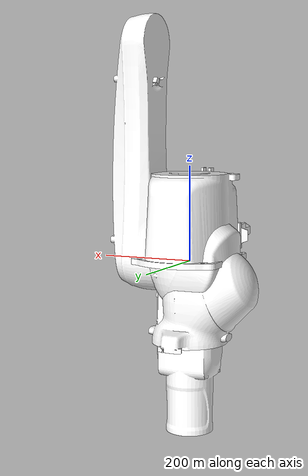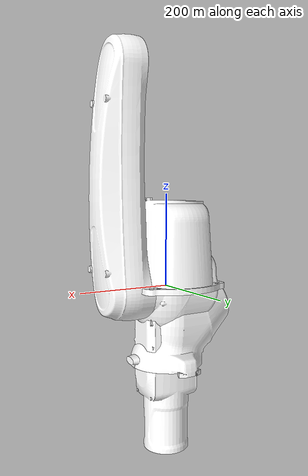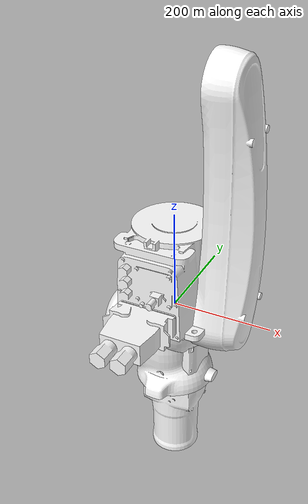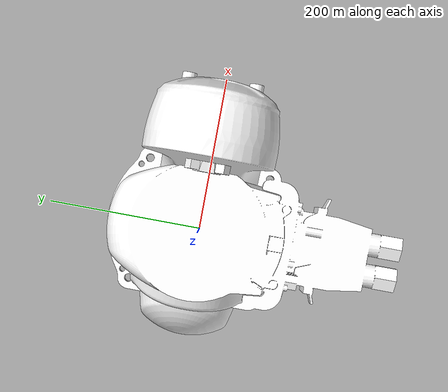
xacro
<?xml version="1.0" ?>
<robot name="khi_rs007l" xmlns:xacro="http://ros.org/wiki/xacro">
  <xacro:include filename="$(find khi_rs_description)/urdf/rs007l_macro.xacro"/>
  <xacro:include filename="$(find khi_rs_description)/urdf/common.gazebo.xacro" />

  <!-- instantiate rs007l -->
  <xacro:khi_rs007l prefix="" />

  <!-- Fix rs007l to world -->

  <link name="world"/>

  <joint name="world2base" type="fixed">
    <parent link="world"/>
    <child link="base_link"/>
    <origin rpy="0 0 0" xyz="0 0 0"/>
  </joint>
</robot>

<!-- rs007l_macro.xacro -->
<robot xmlns:xacro="http://ros.org/wiki/xacro">
  <xacro:macro name="khi_rs007l" params="prefix">

    <xacro:include filename="$(find khi_rs_description)/urdf/rs.transmission.xacro" />
    <xacro:add_transmissions prefix="${prefix}"/>

    <!-- link rviz colors -->
    <material name="${prefix}White">
      <color rgba="1 1 1 1"/>
    </material>

    <material name="${prefix}Black">
      <color rgba="0 0 0 1"/>
    </material>

    <!-- DH parameters -->
    <xacro:property name="dh_j1_j2_roty" value="${radians(-90)}"/>
    <xacro:property name="dh_j3_j4_roty" value="${radians( 90)}"/>
    <xacro:property name="dh_j4_j5_roty" value="${radians(-90)}"/>
    <xacro:property name="dh_j5_j6_roty" value="${radians( 90)}"/>

    <!-- link mass [kg] -->
    <xacro:property name="j0_mass" value="11"/>
    <xacro:property name="j1_mass" value="8.188"/>
    <xacro:property name="j2_mass" value="6.826"/>
    <xacro:property name="j3_mass" value="5.236"/>
    <xacro:property name="j4_mass" value="5.066"/>
    <xacro:property name="j5_mass" value="1.625"/>
    <xacro:property name="j6_mass" value="0.625"/>

    <!-- link lengths [m] -->
    <xacro:property name="j0_length" value="0.36"/>
    <xacro:property name="j1_length" value="0.0"/>
    <xacro:property name="j2_length" value="0.455"/>
    <xacro:property name="j3_length" value="0.0925"/>
    <xacro:property name="j4_length" value="0.3825"/>
    <xacro:property name="j5_length" value="0.078"/>

    <!-- joint limits [rad] -->
    <xacro:property name="j1_lower_limit" value="${radians(-180)}"/>
    <xacro:property name="j1_upper_limit" value="${radians( 180)}"/>
    <xacro:property name="j2_lower_limit" value="${radians(-135)}"/>
    <xacro:property name="j2_upper_limit" value="${radians( 135)}"/>
    <xacro:property name="j3_lower_limit" value="${radians(-157)}"/>
    <xacro:property name="j3_upper_limit" value="${radians( 157)}"/>
    <xacro:property name="j4_lower_limit" value="${radians(-200)}"/>
    <xacro:property name="j4_upper_limit" value="${radians( 200)}"/>
    <xacro:property name="j5_lower_limit" value="${radians(-125)}"/>
    <xacro:property name="j5_upper_limit" value="${radians( 125)}"/>
    <xacro:property name="j6_lower_limit" value="${radians(-360)}"/>
    <xacro:property name="j6_upper_limit" value="${radians( 360)}"/>

    <!-- joint verocity limits [rad/s] -->
    <xacro:property name="j1_velocity_limit" value="${radians( 370)}"/>
    <xacro:property name="j2_velocity_limit" value="${radians( 310)}"/>
    <xacro:property name="j3_velocity_limit" value="${radians( 410)}"/>
    <xacro:property name="j4_velocity_limit" value="${radians( 550)}"/>
    <xacro:property name="j5_velocity_limit" value="${radians( 550)}"/>
    <xacro:property name="j6_velocity_limit" value="${radians(1000)}"/>

    <!-- link inertial(TODO : set correct link inertial )-->
    <xacro:macro name="default_inertial" params="mass">
      <inertial>
        <mass value="${mass}" />
        <inertia ixx="1.0" ixy="0.0" ixz="0.0" iyy="1.0" iyz="0.0" izz="1.0" />
      </inertial>
    </xacro:macro>

    <!-- rs007l start -->

    <!-- Link 0 -->
    <link name="${prefix}base_link">
      <visual>
        <geometry>
          <mesh filename="package://khi_rs_description/meshes/RS007L_J0.stl"/>
        </geometry>
        <material name="${prefix}White"/>
        <origin rpy="0 0 0" xyz="0 0 0"/>
      </visual>
      <collision>
        <geometry>
          <mesh filename="package://khi_rs_description/meshes/RS007L_J0.stl"/>
        </geometry>
        <origin rpy="0 0 0" xyz="0 0 0"/>
      </collision>
      <xacro:default_inertial mass="${j0_mass}"/>
    </link>

    <!-- Link 1 -->
    <joint name="${prefix}joint1" type="revolute">
      <axis xyz="0 0 -1" rpy="0 0 0" />
      <limit effort="1000.0" lower="${j1_lower_limit}" upper="${j1_upper_limit}" velocity="${j1_velocity_limit}"/>
      <origin xyz="0 0 ${j0_length}" rpy="0 0 0" />
      <parent link="${prefix}base_link"/>
      <child link="${prefix}link1"/>
      <dynamics damping="0.0" friction="0.0"/>
    </joint>

    <link name="${prefix}link1">
      <visual>
        <geometry>
          <mesh filename="package://khi_rs_description/meshes/RS007L_J1.stl"/>
        </geometry>
        <material name="${prefix}White"/>
        <origin rpy="0 0 0" xyz="0 0 0"/>
      </visual>
      <collision>
        <geometry>
          <mesh filename="package://khi_rs_description/meshes/RS007L_J1.stl"/>
        </geometry>
        <origin rpy="0 0 0" xyz="0 0 0"/>
      </collision>
      <xacro:default_inertial mass="${j1_mass}"/>
    </link>

    <!-- Link 2 -->
    <joint name="${prefix}joint2" type="revolute">
      <axis xyz="0 0 1" rpy="0 0 0" />
      <limit effort="1000.0" lower="${j2_lower_limit}" upper="${j2_upper_limit}" velocity="${j2_velocity_limit}"/>
      <origin xyz="0 0 ${j1_length}" rpy="0 ${dh_j1_j2_roty} 0" />
      <parent link="${prefix}link1"/>
      <child link="${prefix}link2"/>
      <dynamics damping="0.0" friction="0.0"/>
    </joint>

    <link name="${prefix}link2">
      <visual>
        <geometry>
          <mesh filename="package://khi_rs_description/meshes/RS007L_J2.stl"/>
        </geometry>
        <material name="${prefix}White"/>
        <origin xyz="0 0 0" rpy="0 ${dh_j1_j2_roty*-1} 0"/>
      </visual>
      <collision>
        <geometry>
          <mesh filename="package://khi_rs_description/meshes/RS007L_J2.stl"/>
        </geometry>
        <origin xyz="0 0 0" rpy="0 ${dh_j1_j2_roty*-1} 0"/>
      </collision>
      <xacro:default_inertial mass="0${j2_mass}"/>
    </link>

    <!-- Link 3 -->
    <joint name="${prefix}joint3" type="revolute">
      <axis xyz="0 0 -1" rpy="0 0 0" />
      <limit effort="1000.0" lower="${j3_lower_limit}" upper="${j3_upper_limit}" velocity="${j3_velocity_limit}"/>
      <origin xyz="${j2_length} 0 0" rpy="0 0 0" />
      <parent link="${prefix}link2"/>
      <child link="${prefix}link3"/>
      <dynamics damping="0.0" friction="0.0"/>
    </joint>

    <link name="${prefix}link3">
      <visual>
        <geometry>
          <mesh filename="package://khi_rs_description/meshes/RS007L_J3.stl"/>
        </geometry>
        <material name="${prefix}White"/>
        <origin xyz="0 0 0" rpy="0 ${dh_j1_j2_roty*-1} 0"/>
      </visual>
      <collision>
        <geometry>
          <mesh filename="package://khi_rs_description/meshes/RS007L_J3.stl"/>
        </geometry>
        <origin xyz="0 0 0" rpy="0 ${dh_j1_j2_roty*-1} 0"/>
      </collision>
      <xacro:default_inertial mass="${j3_mass}"/>
    </link>

    <!-- Link 4 -->
    <joint name="${prefix}joint4" type="revolute">
      <axis xyz="0 0 1" rpy="0 0 0" />
      <limit effort="1000.0" lower="${j4_lower_limit}" upper="${j4_upper_limit}" velocity="${j4_velocity_limit}"/>
      <origin xyz="${j3_length} 0 0" rpy="0 ${dh_j3_j4_roty} 0" />
      <parent link="${prefix}link3"/>
      <child link="${prefix}link4"/>
      <dynamics damping="0.0" friction="0.0"/>
    </joint>

    <link name="${prefix}link4">
      <visual>
        <geometry>
          <mesh filename="package://khi_rs_description/meshes/RS007L_J4.stl"/>
        </geometry>
        <material name="${prefix}White"/>
        <origin xyz="0 0 ${j4_length}" rpy="0 0 0"/>
      </visual>
      <collision>
        <geometry>
          <mesh filename="package://khi_rs_description/meshes/RS007L_J4.stl"/>
        </geometry>
        <origin xyz="0 0 ${j4_length}" rpy="0 0 0"/>
      </collision>
      <xacro:default_inertial mass="${j4_mass}"/>
    </link>

    <!-- Link 5 -->
    <joint name="${prefix}joint5" type="revolute">
      <axis xyz="0 0 -1" rpy="0 0 0" />
      <limit effort="1000.0" lower="${j5_lower_limit}" upper="${j5_upper_limit}" velocity="${j5_velocity_limit}"/>
      <origin xyz="0 0 ${j4_length}" rpy="0 ${dh_j4_j5_roty} 0" />
      <parent link="${prefix}link4"/>
      <child link="${prefix}link5"/>
      <dynamics damping="0.0" friction="0.0"/>
    </joint>

    <link name="${prefix}link5">
      <visual>
        <geometry>
          <mesh filename="package://khi_rs_description/meshes/RS007L_J5.stl"/>
        </geometry>
        <material name="${prefix}White"/>
        <origin xyz="0 0 0" rpy="0 ${dh_j4_j5_roty*-1} 0"/>
      </visual>
      <collision>
        <geometry>
          <mesh filename="package://khi_rs_description/meshes/RS007L_J5.stl"/>
        </geometry>
        <origin xyz="0 0 0" rpy="0 ${dh_j4_j5_roty*-1} 0"/>
      </collision>
      <xacro:default_inertial mass="${j5_mass}"/>
    </link>

    <!-- Link 6 -->
    <joint name="${prefix}joint6" type="revolute">
      <axis xyz="0 0 1" rpy="0 0 0" />
      <limit effort="1000.0" lower="${j6_lower_limit}" upper="${j6_upper_limit}" velocity="${j6_velocity_limit}"/>
      <origin xyz="${j5_length} 0 0" rpy="0 ${dh_j5_j6_roty} 0" />
      <parent link="${prefix}link5"/>
      <child link="${prefix}link6"/>
      <dynamics damping="0.0" friction="0.0"/>
    </joint>

    <link name="${prefix}link6">
      <visual>
        <geometry>
          <mesh filename="package://khi_rs_description/meshes/RS007L_J6.stl"/>
        </geometry>
        <material name="${prefix}Black"/>
        <origin xyz="0 0 0" rpy="0 0 0"/>
      </visual>
      <collision>
        <geometry>
          <mesh filename="package://khi_rs_description/meshes/RS007L_J6.stl"/>
        </geometry>
        <origin xyz="0 0 0" rpy="0 0 0"/>
      </collision>
      <xacro:default_inertial mass="${j6_mass}"/>
    </link>
  </xacro:macro>
</robot>
